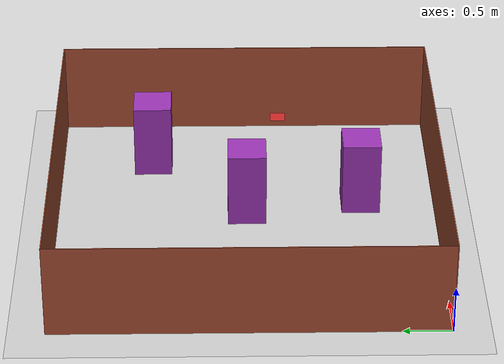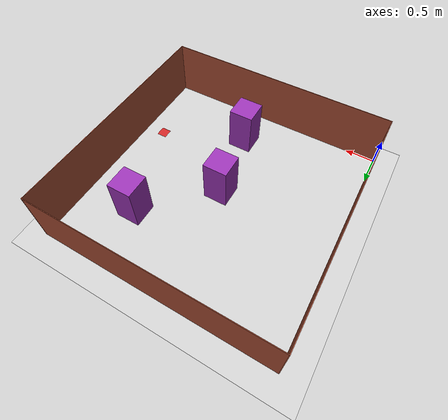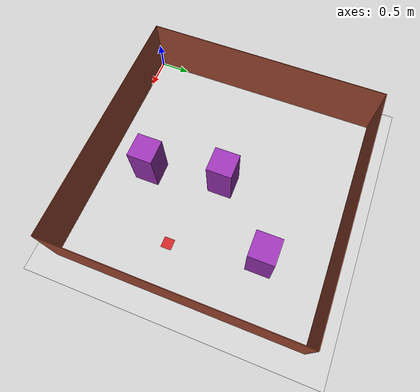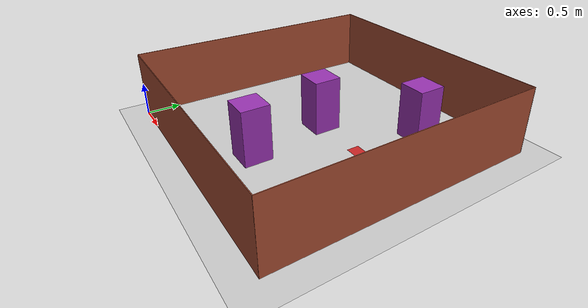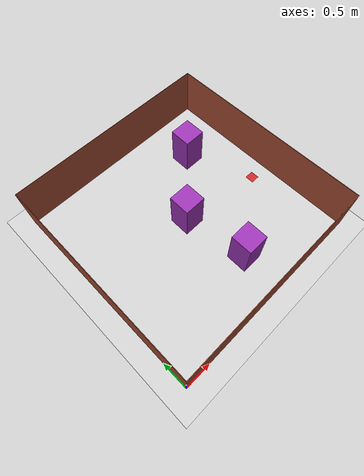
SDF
<sdf version="1.6">
 <world name="default">
  <light name="sun" type="directional">
   <pose>0 0 10 0 -0 0</pose>
   <diffuse>0.8 0.8 0.8 1</diffuse>
   <specular>0.2 0.2 0.2 1</specular>
   <attenuation>
    <range>1000</range>
    <constant>0.9</constant>
    <linear>0.01</linear>
    <quadratic>0.001</quadratic>
   </attenuation>
   <direction>0.5 0.1 -0.9</direction>
  </light>
  <model name="ground_plane">
   <static>1</static>
   <link name="link">
    <collision name="collision">
     <geometry><plane><normal>0 0 1</normal><size>4 4</size></plane></geometry>
     <surface><friction><ode><mu>100</mu><mu2>50</mu2></ode></friction></surface>
    </collision>
    <visual name="visual">
     <cast_shadows>0</cast_shadows>
     <geometry><plane><normal>0 0 1</normal><size>100 100</size></plane></geometry>
     <material>
      <script><uri>file://media/materials/scripts/gazebo.material</uri><name>Gazebo/Grey</name></script>
     </material>
    </visual>
    <velocity_decay><linear>0</linear><angular>0</angular></velocity_decay>
   </link>
  </model>
  <scene><ambient>0.4 0.4 0.4 1</ambient><background>0.7 0.7 0.7 1</background><shadows>0</shadows></scene>
  <physics name="default_physics" default="0" type="ode">
   <max_step_size>0.01</max_step_size>
   <real_time_factor>1</real_time_factor>
   <real_time_update_rate>100</real_time_update_rate>
  </physics>
  <gravity>0 0 -9.8</gravity>
  <magnetic_field>6e-06 2.3e-05 -4.2e-05</magnetic_field>
  <atmosphere type="adiabatic"/>
  <spherical_coordinates>
   <surface_model>EARTH_WGS84</surface_model>
   <latitude_deg>0</latitude_deg>
   <longitude_deg>0</longitude_deg>
   <elevation>0</elevation>
   <heading_deg>0</heading_deg>
  </spherical_coordinates>
  <audio><device>default</device></audio>
  <model name="model">
   <pose>2 2 0 0 -0 0</pose>
   <link name="Wall_0">
    <collision name="Wall_0_Collision">
     <geometry><box><size>4.01 0.01 1</size></box></geometry>
     <pose>0 0 0.5 0 -0 0</pose>
    </collision>
    <visual name="Wall_0_Visual">
     <pose>0 0 0.5 0 -0 0</pose>
     <geometry><box><size>4.01 0.01 1</size></box></geometry>
     <material>
      <script><uri>file://media/materials/scripts/gazebo.material</uri><name>Gazebo/Bricks</name></script>
      <ambient>0.921569 0.807843 0.615686 1</ambient>
     </material>
     <meta><layer>0</layer></meta>
    </visual>
    <pose>0 -2 0 0 -0 0</pose>
   </link>
   <link name="Wall_2">
    <collision name="Wall_2_Collision">
     <geometry><box><size>4.01 0.01 1</size></box></geometry>
     <pose>0 0 0.5 0 -0 0</pose>
    </collision>
    <visual name="Wall_2_Visual">
     <pose>0 0 0.5 0 -0 0</pose>
     <geometry><box><size>4.01 0.01 1</size></box></geometry>
     <material>
      <script><uri>file://media/materials/scripts/gazebo.material</uri><name>Gazebo/Bricks</name></script>
      <ambient>0.921569 0.807843 0.615686 1</ambient>
     </material>
     <meta><layer>0</layer></meta>
    </visual>
    <pose>2 0 0 0 -0 1.5708</pose>
   </link>
   <link name="Wall_4">
    <collision name="Wall_4_Collision">
     <geometry><box><size>4 0.01 1</size></box></geometry>
     <pose>0 0 0.5 0 -0 0</pose>
    </collision>
    <visual name="Wall_4_Visual">
     <pose>0 0 0.5 0 -0 0</pose>
     <geometry><box><size>4 0.01 1</size></box></geometry>
     <material>
      <script><uri>file://media/materials/scripts/gazebo.material</uri><name>Gazebo/Bricks</name></script>
      <ambient>0.921569 0.807843 0.615686 1</ambient>
     </material>
     <meta><layer>0</layer></meta>
    </visual>
    <pose>0.005 2 0 0 -0 3.14159</pose>
   </link>
   <link name="Wall_6">
    <collision name="Wall_6_Collision">
     <geometry><box><size>4 0.01 1</size></box></geometry>
     <pose>0 0 0.5 0 -0 0</pose>
    </collision>
    <visual name="Wall_6_Visual">
     <pose>0 0 0.5 0 -0 0</pose>
     <geometry><box><size>4 0.01 1</size></box></geometry>
     <material>
      <script><uri>file://media/materials/scripts/gazebo.material</uri><name>Gazebo/Bricks</name></script>
      <ambient>0.921569 0.807843 0.615686 1</ambient>
     </material>
     <meta><layer>0</layer></meta>
    </visual>
    <pose>-2 0.005 0 0 -0 -1.5708</pose>
   </link>
   <static>1</static>
  </model>
  <model name="model_0">
   <link name="link_0">
    <inertial>
     <mass>75</mass>
     <inertia><ixx>12.5</ixx><ixy>0</ixy><ixz>0</ixz><iyy>12.5</iyy><iyz>0</iyz><izz>12.5</izz></inertia>
    </inertial>
    <pose>-0.2 -1.13333 0 0 -0 0</pose>
    <visual name="visual">
     <geometry><box><size>0.4 0.4 0.8</size></box></geometry>
     <material>
      <lighting>1</lighting>
      <script><uri>file://media/materials/scripts/gazebo.material</uri><name>Gazebo/Purple</name></script>
      <shader type="vertex"><normal_map>__default__</normal_map></shader>
      <ambient>1 0 1 1</ambient>
      <diffuse>1 0 1 1</diffuse>
      <specular>0.1 0.1 0.1 1</specular>
      <emissive>0 0 0 1</emissive>
     </material>
    </visual>
    <collision name="collision">
     <geometry><box><size>0.4 0.4 0.8</size></box></geometry>
     <surface>
      <friction>
       <ode><mu>1</mu><mu2>1</mu2><fdir1>0 0 0</fdir1><slip1>0</slip1><slip2>0</slip2></ode>
       <torsional>
        <coefficient>1</coefficient>
        <patch_radius>0</patch_radius>
        <surface_radius>0</surface_radius>
        <use_patch_radius>1</use_patch_radius>
        <ode><slip>0</slip></ode>
       </torsional>
      </friction>
      <bounce><restitution_coefficient>0</restitution_coefficient><threshold>1e+06</threshold></bounce>
      <contact>
       <collide_without_contact>0</collide_without_contact>
       <collide_without_contact_bitmask>1</collide_without_contact_bitmask>
       <collide_bitmask>1</collide_bitmask>
       <ode>
        <soft_cfm>0</soft_cfm>
        <soft_erp>0.2</soft_erp>
        <kp>1e+13</kp>
        <kd>1</kd>
        <max_vel>0.01</max_vel>
        <min_depth>0</min_depth>
       </ode>
       <bullet>
        <split_impulse>1</split_impulse>
        <split_impulse_penetration_threshold>-0.01</split_impulse_penetration_threshold>
        <soft_cfm>0</soft_cfm>
        <soft_erp>0.2</soft_erp>
        <kp>1e+13</kp>
        <kd>1</kd>
       </bullet>
      </contact>
     </surface>
    </collision>
   </link>
   <link name="link_0_clone">
    <inertial>
     <mass>75</mass>
     <inertia><ixx>12.5</ixx><ixy>0</ixy><ixz>0</ixz><iyy>12.5</iyy><iyz>0</iyz><izz>12.5</izz></inertia>
    </inertial>
    <pose>-0.4 0.066667 0 0 -0 0</pose>
    <visual name="visual">
     <geometry><box><size>0.4 0.4 0.8</size></box></geometry>
     <material>
      <lighting>1</lighting>
      <script><uri>file://media/materials/scripts/gazebo.material</uri><name>Gazebo/Purple</name></script>
      <shader type="vertex"><normal_map>__default__</normal_map></shader>
      <ambient>1 0 1 1</ambient>
      <diffuse>1 0 1 1</diffuse>
      <specular>0.1 0.1 0.1 1</specular>
      <emissive>0 0 0 1</emissive>
     </material>
    </visual>
    <collision name="collision">
     <geometry><box><size>0.4 0.4 0.8</size></box></geometry>
     <surface>
      <friction>
       <ode><mu>1</mu><mu2>1</mu2><fdir1>0 0 0</fdir1><slip1>0</slip1><slip2>0</slip2></ode>
       <torsional>
        <coefficient>1</coefficient>
        <patch_radius>0</patch_radius>
        <surface_radius>0</surface_radius>
        <use_patch_radius>1</use_patch_radius>
        <ode><slip>0</slip></ode>
       </torsional>
      </friction>
      <bounce><restitution_coefficient>0</restitution_coefficient><threshold>1e+06</threshold></bounce>
      <contact>
       <collide_without_contact>0</collide_without_contact>
       <collide_without_contact_bitmask>1</collide_without_contact_bitmask>
       <collide_bitmask>1</collide_bitmask>
       <ode>
        <soft_cfm>0</soft_cfm>
        <soft_erp>0.2</soft_erp>
        <kp>1e+13</kp>
        <kd>1</kd>
        <max_vel>0.01</max_vel>
        <min_depth>0</min_depth>
       </ode>
       <bullet>
        <split_impulse>1</split_impulse>
        <split_impulse_penetration_threshold>-0.01</split_impulse_penetration_threshold>
        <soft_cfm>0</soft_cfm>
        <soft_erp>0.2</soft_erp>
        <kp>1e+13</kp>
        <kd>1</kd>
       </bullet>
      </contact>
     </surface>
    </collision>
   </link>
   <link name="link_0_clone_clone">
    <inertial>
     <mass>75</mass>
     <inertia><ixx>12.5</ixx><ixy>0</ixy><ixz>0</ixz><iyy>12.5</iyy><iyz>0</iyz><izz>12.5</izz></inertia>
    </inertial>
    <pose>0.6 1.06667 0 0 -0 0</pose>
    <visual name="visual">
     <geometry><box><size>0.4 0.4 0.8</size></box></geometry>
     <material>
      <lighting>1</lighting>
      <script><uri>file://media/materials/scripts/gazebo.material</uri><name>Gazebo/Purple</name></script>
      <shader type="vertex"><normal_map>__default__</normal_map></shader>
      <ambient>1 0 1 1</ambient>
      <diffuse>1 0 1 1</diffuse>
      <specular>0.1 0.1 0.1 1</specular>
      <emissive>0 0 0 1</emissive>
     </material>
    </visual>
    <collision name="collision">
     <geometry><box><size>0.4 0.4 0.8</size></box></geometry>
     <surface>
      <friction>
       <ode><mu>1</mu><mu2>1</mu2><fdir1>0 0 0</fdir1><slip1>0</slip1><slip2>0</slip2></ode>
       <torsional>
        <coefficient>1</coefficient>
        <patch_radius>0</patch_radius>
        <surface_radius>0</surface_radius>
        <use_patch_radius>1</use_patch_radius>
        <ode><slip>0</slip></ode>
       </torsional>
      </friction>
      <bounce><restitution_coefficient>0</restitution_coefficient><threshold>1e+06</threshold></bounce>
      <contact>
       <collide_without_contact>0</collide_without_contact>
       <collide_without_contact_bitmask>1</collide_without_contact_bitmask>
       <collide_bitmask>1</collide_bitmask>
       <ode>
        <soft_cfm>0</soft_cfm>
        <soft_erp>0.2</soft_erp>
        <kp>1e+13</kp>
        <kd>1</kd>
        <max_vel>0.01</max_vel>
        <min_depth>0</min_depth>
       </ode>
       <bullet>
        <split_impulse>1</split_impulse>
        <split_impulse_penetration_threshold>-0.01</split_impulse_penetration_threshold>
        <soft_cfm>0</soft_cfm>
        <soft_erp>0.2</soft_erp>
        <kp>1e+13</kp>
        <kd>1</kd>
       </bullet>
      </contact>
     </surface>
    </collision>
   </link>
   <static>0</static>
   <pose>2.4 1.93333 0.5 0 -0 0</pose>
  </model>
  <model name="unit_box">
   <pose>3.33338 1.64698 0.5 0 -0 0</pose>
   <link name="link">
    <inertial>
     <mass>100</mass>
     <inertia><ixx>16.6667</ixx><ixy>0</ixy><ixz>0</ixz><iyy>16.6667</iyy><iyz>0</iyz><izz>16.6667</izz></inertia>
    </inertial>
    <collision name="collision"><geometry><box><size>0.16 0.16 1e-06</size></box></geometry></collision>
    <visual name="visual">
     <geometry><box><size>0.16 0.16 1e-06</size></box></geometry>
     <material>
      <script><name>Gazebo/Red</name><uri>file://media/materials/scripts/gazebo.material</uri></script>
     </material>
    </visual>
   </link>
  </model>
 </world>
</sdf>
